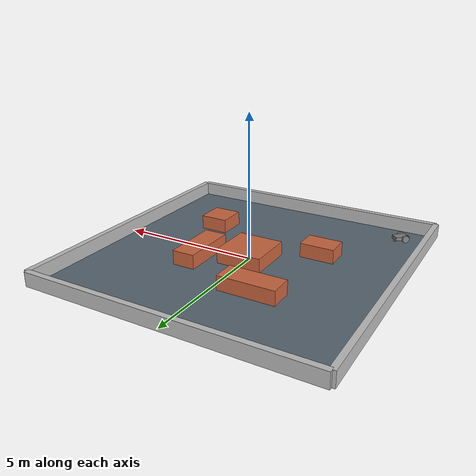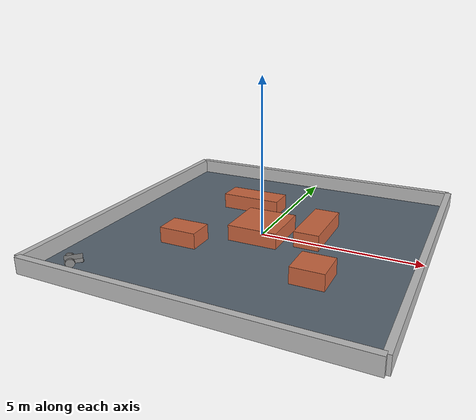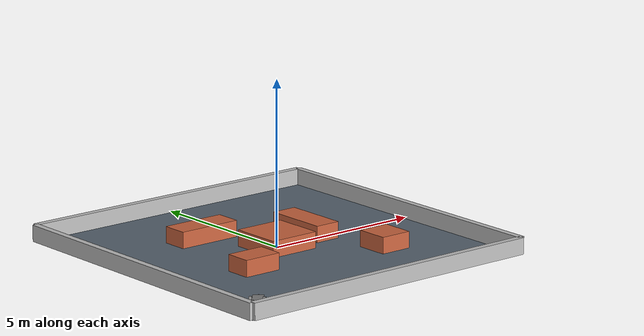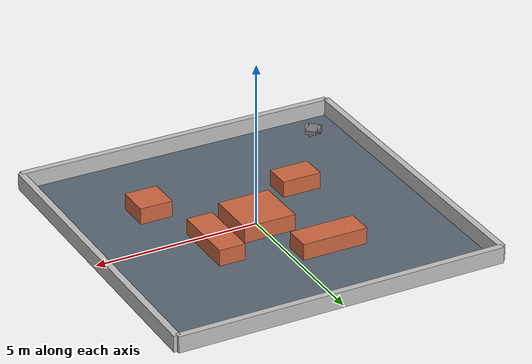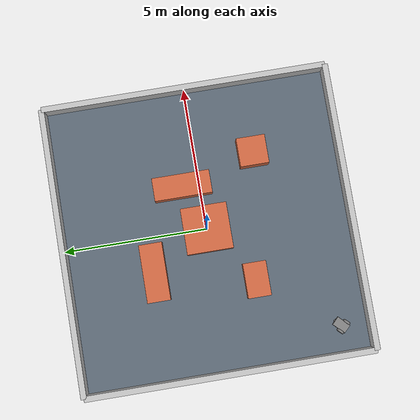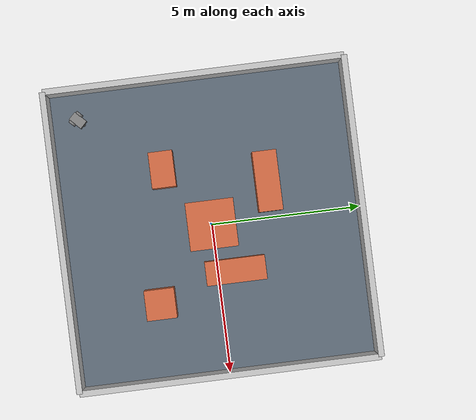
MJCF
<mujoco model="agentbench_r1_probe">
  <option timestep="0.002" integrator="implicitfast"/>
  <compiler autolimits="true" angle="degree"/>

  <default>
    <geom friction="1.0 0.005 0.0001"/>
  </default>

  <worldbody>
    <light pos="0 0 6" dir="0 0 -1"/>
    <camera name="arena" pos="0 -12 9" xyaxes="1 0 0 0 0.6 0.8" fovy="55"
            resolution="1280 720"/>

    <geom name="floor" type="plane" size="5 5 0.1" rgba="0.35 0.4 0.45 1"/>

    <geom name="wall_south" type="box" pos="0 -5 0.25" size="5 0.1 0.25"
          rgba="0.75 0.75 0.75 1"/>
    <geom name="wall_north" type="box" pos="0 5 0.25" size="5 0.1 0.25"
          rgba="0.75 0.75 0.75 1"/>
    <geom name="wall_west" type="box" pos="-5 0 0.25" size="0.1 5 0.25"
          rgba="0.75 0.75 0.75 1"/>
    <geom name="wall_east" type="box" pos="5 0 0.25" size="0.1 5 0.25"
          rgba="0.75 0.75 0.75 1"/>

    <!-- benchmark_assets/obstacles.json: centres, and HALF extents here
         because MJCF box size is a half-length while the asset publishes the
         full extent. -->
    <geom name="OBSTACLE_1" type="box" pos="0 0 0.25" size="0.8 0.8 0.25"
          rgba="0.8 0.4 0.25 1"/>
    <geom name="OBSTACLE_2" type="box" pos="-2 -1.4 0.25" size="0.6 0.4 0.25"
          rgba="0.8 0.4 0.25 1"/>
    <geom name="OBSTACLE_3" type="box" pos="1.6 0.6 0.25" size="0.4 1.0 0.25"
          rgba="0.8 0.4 0.25 1"/>
    <geom name="OBSTACLE_4" type="box" pos="-1.2 2 0.25" size="1.0 0.4 0.25"
          rgba="0.8 0.4 0.25 1"/>
    <geom name="OBSTACLE_5" type="box" pos="2.4 -2 0.25" size="0.5 0.5 0.25"
          rgba="0.8 0.4 0.25 1"/>

    <body name="rover" pos="-4 -4 0.15" euler="0 0 45">
      <freejoint/>
      <geom name="chassis" type="box" size="0.25 0.16 0.06" mass="6"/>
      <geom name="caster" type="sphere" pos="0.22 0 -0.09" size="0.055"
            mass="0.2" friction="0.02 0.005 0.0001"/>
      <site name="lidar_origin" pos="0.26 0 0.06" zaxis="1 0 0" size="0.01"/>
      <body name="wheel_left" pos="-0.1 0.19 -0.02">
        <joint name="wheel_left_joint" type="hinge" axis="0 1 0"/>
        <geom name="tyre_left" type="cylinder" size="0.13 0.04"
              quat="0.7071068 0.7071068 0 0" mass="0.8"/>
      </body>
      <body name="wheel_right" pos="-0.1 -0.19 -0.02">
        <joint name="wheel_right_joint" type="hinge" axis="0 1 0"/>
        <geom name="tyre_right" type="cylinder" size="0.13 0.04"
              quat="0.7071068 0.7071068 0 0" mass="0.8"/>
      </body>
    </body>
  </worldbody>

  <sensor>
    <rangefinder name="lidar_forward" site="lidar_origin"/>
  </sensor>

  <actuator>
    <velocity name="left_motor" joint="wheel_left_joint" kv="18"
              ctrlrange="-25 25"/>
    <velocity name="right_motor" joint="wheel_right_joint" kv="18"
              ctrlrange="-25 25"/>
  </actuator>
</mujoco>
